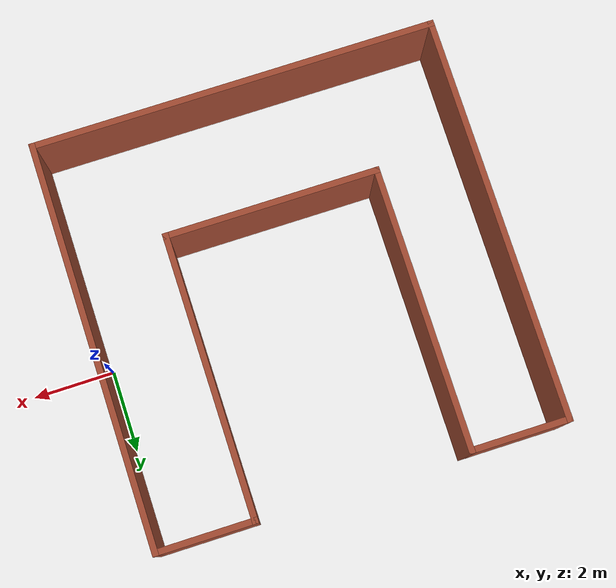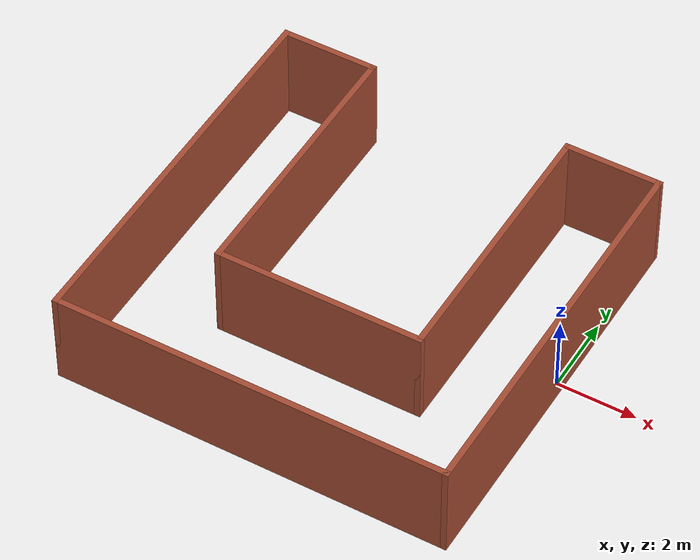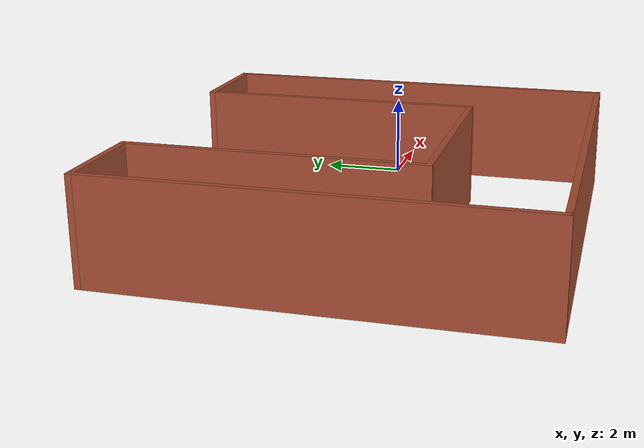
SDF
<?xml version='1.0'?>
<sdf version='1.6'>
  <model name='oficina'>
    <pose frame=''>-4.82155 -0.408473 0 0 -0 0</pose>
    <link name='Wall_13'>
      <collision name='Wall_13_Collision'>
        <geometry>
          <box>
            <size>10 0.15 2.5</size>
          </box>
        </geometry>
        <pose frame=''>0 0 1.25 0 -0 0</pose>
      </collision>
      <visual name='Wall_13_Visual'>
        <pose frame=''>0 0 1.25 0 -0 0</pose>
        <geometry>
          <box>
            <size>10 0.15 2.5</size>
          </box>
        </geometry>
        <material>
          <script>
            <uri>file://media/materials/scripts/gazebo.material</uri>
            <name>Gazebo/Bricks</name>
          </script>
          <ambient>1 1 1 1</ambient>
        </material>
        <meta>
          <layer>0</layer>
        </meta>
      </visual>
      <pose frame=''>-4.925 -0 0 0 -0 -1.5708</pose>
    </link>
    <link name='Wall_15'>
      <collision name='Wall_15_Collision'>
        <geometry>
          <box>
            <size>10 0.15 2.5</size>
          </box>
        </geometry>
        <pose frame=''>0 0 1.25 0 -0 0</pose>
      </collision>
      <visual name='Wall_15_Visual'>
        <pose frame=''>0 0 1.25 0 -0 0</pose>
        <geometry>
          <box>
            <size>10 0.15 2.5</size>
          </box>
        </geometry>
        <material>
          <script>
            <uri>file://media/materials/scripts/gazebo.material</uri>
            <name>Gazebo/Bricks</name>
          </script>
          <ambient>1 1 1 1</ambient>
        </material>
        <meta>
          <layer>0</layer>
        </meta>
      </visual>
      <pose frame=''>0 -4.925 0 0 -0 0</pose>
    </link>
    <link name='Wall_16'>
      <collision name='Wall_16_Collision'>
        <geometry>
          <box>
            <size>10 0.15 2.5</size>
          </box>
        </geometry>
        <pose frame=''>0 0 1.25 0 -0 0</pose>
      </collision>
      <visual name='Wall_16_Visual'>
        <pose frame=''>0 0 1.25 0 -0 0</pose>
        <geometry>
          <box>
            <size>10 0.15 2.5</size>
          </box>
        </geometry>
        <material>
          <script>
            <uri>file://media/materials/scripts/gazebo.material</uri>
            <name>Gazebo/Bricks</name>
          </script>
          <ambient>1 1 1 1</ambient>
        </material>
        <meta>
          <layer>0</layer>
        </meta>
      </visual>
      <pose frame=''>4.925 -0 0 0 -0 1.5708</pose>
    </link>
    <link name='Wall_17'>
      <collision name='Wall_17_Collision'>
        <geometry>
          <box>
            <size>2.5 0.15 2.5</size>
          </box>
        </geometry>
        <pose frame=''>0 0 1.25 0 -0 0</pose>
      </collision>
      <visual name='Wall_17_Visual'>
        <pose frame=''>0 0 1.25 0 -0 0</pose>
        <geometry>
          <box>
            <size>2.5 0.15 2.5</size>
          </box>
        </geometry>
        <material>
          <script>
            <uri>file://media/materials/scripts/gazebo.material</uri>
            <name>Gazebo/Bricks</name>
          </script>
          <ambient>1 1 1 1</ambient>
        </material>
        <meta>
          <layer>0</layer>
        </meta>
      </visual>
      <pose frame=''>3.75 4.925 0 0 -0 3.14159</pose>
    </link>
    <link name='Wall_19'>
      <collision name='Wall_19_Collision'>
        <geometry>
          <box>
            <size>7 0.15 2.5</size>
          </box>
        </geometry>
        <pose frame=''>0 0 1.25 0 -0 0</pose>
      </collision>
      <visual name='Wall_19_Visual'>
        <pose frame=''>0 0 1.25 0 -0 0</pose>
        <geometry>
          <box>
            <size>7 0.15 2.5</size>
          </box>
        </geometry>
        <material>
          <script>
            <uri>file://media/materials/scripts/gazebo.material</uri>
            <name>Gazebo/Bricks</name>
          </script>
          <ambient>1 1 1 1</ambient>
        </material>
        <meta>
          <layer>0</layer>
        </meta>
      </visual>
      <pose frame=''>2.575 1.5 0 0 -0 -1.5708</pose>
    </link>
    <link name='Wall_21'>
      <collision name='Wall_21_Collision'>
        <geometry>
          <box>
            <size>2.5 0.15 2.5</size>
          </box>
        </geometry>
        <pose frame=''>0 0 1.25 0 -0 0</pose>
      </collision>
      <visual name='Wall_21_Visual'>
        <pose frame=''>0 0 1.25 0 -0 0</pose>
        <geometry>
          <box>
            <size>2.5 0.15 2.5</size>
          </box>
        </geometry>
        <material>
          <script>
            <uri>file://media/materials/scripts/gazebo.material</uri>
            <name>Gazebo/Bricks</name>
          </script>
          <ambient>1 1 1 1</ambient>
        </material>
        <meta>
          <layer>0</layer>
        </meta>
      </visual>
      <pose frame=''>-3.75 4.925 0 0 -0 0</pose>
    </link>
    <link name='Wall_22'>
      <collision name='Wall_22_Collision'>
        <geometry>
          <box>
            <size>7 0.15 2.5</size>
          </box>
        </geometry>
        <pose frame=''>0 0 1.25 0 -0 0</pose>
      </collision>
      <visual name='Wall_22_Visual'>
        <pose frame=''>0 0 1.25 0 -0 0</pose>
        <geometry>
          <box>
            <size>7 0.15 2.5</size>
          </box>
        </geometry>
        <material>
          <script>
            <uri>file://media/materials/scripts/gazebo.material</uri>
            <name>Gazebo/Bricks</name>
          </script>
          <ambient>1 1 1 1</ambient>
        </material>
        <meta>
          <layer>0</layer>
        </meta>
      </visual>
      <pose frame=''>-2.575 1.5 0 0 -0 -1.5708</pose>
    </link>
    <link name='Wall_23'>
      <collision name='Wall_23_Collision'>
        <geometry>
          <box>
            <size>5.3 0.15 2.5</size>
          </box>
        </geometry>
        <pose frame=''>0 0 1.25 0 -0 0</pose>
      </collision>
      <visual name='Wall_23_Visual'>
        <pose frame=''>0 0 1.25 0 -0 0</pose>
        <geometry>
          <box>
            <size>5.3 0.15 2.5</size>
          </box>
        </geometry>
        <material>
          <script>
            <uri>file://media/materials/scripts/gazebo.material</uri>
            <name>Gazebo/Bricks</name>
          </script>
          <ambient>1 1 1 1</ambient>
        </material>
        <meta>
          <layer>0</layer>
        </meta>
      </visual>
      <pose frame=''>0 -1.925 0 0 -0 0</pose>
    </link>
    <static>1</static>
  </model>
</sdf>
